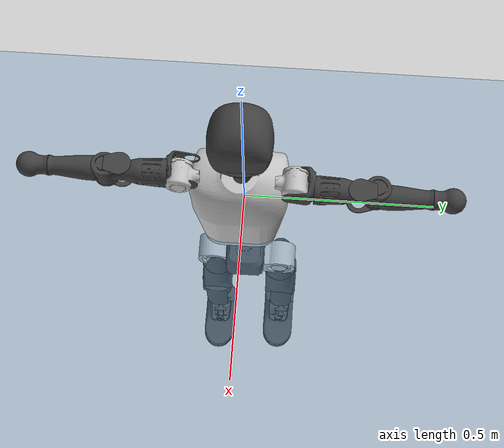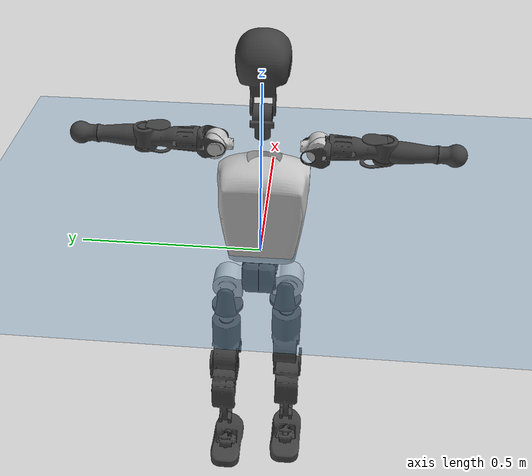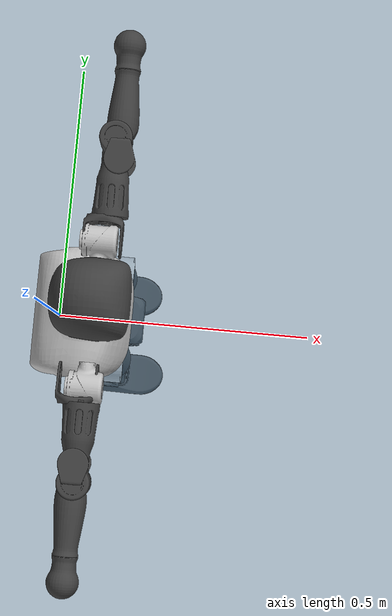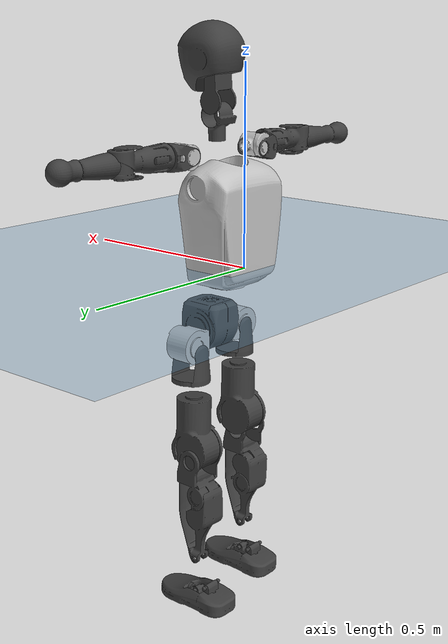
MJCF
<mujoco model="T1">
  <compiler angle="radian" assetdir="assets" balanceinertia="true" inertiafromgeom="false"/>

  <option timestep="0.005" density="1.2" viscosity="2e-05"/>

  <size nkey="1"/>

  <visual>
    <quality shadowsize="8192"/>
    <map shadowclip="0.5"/>
  </visual>

  <default>
    <default class="/">
      <joint armature="0.01" damping="0.01" frictionloss="0.1"/>
      <geom contype="0" conaffinity="0" group="1" solref="-1000 -80"/>
      <site size="0.01 0.005 0.005" group="5"/>
      <general forcelimited="true" biastype="affine" gainprm="25" biasprm="0 -25 -0.6"/>
      <default class="t1">
        <geom rgba="0.25 0.25 0.25 1"/>
        <default class="visual">
          <geom type="mesh" group="2"/>
        </default>
        <default class="collision">
          <geom group="3"/>
        </default>
        <default class="foot">
          <geom size="0.1115 0.05 0.015" type="box" condim="6" group="4" priority="1" solimp="0.015 1 0.015"/>
        </default>
        <default class="reward_collision_sphere">
          <geom group="5" rgba="1 0 0 1"/>
        </default>
      </default>
    </default>
  </default>

  <asset>
    <texture type="skybox" colorspace="auto" name="//unnamed_texture_0" builtin="gradient" rgb1="0.95 0.95 0.95" rgb2="0.95 0.95 0.95" width="100" height="600"/>
    <texture type="2d" colorspace="auto" name="texplane" builtin="checker" rgb1="0.345 0.575 0.748" rgb2="0.345 0.575 0.748" markrgb="1 1 1" width="512" height="512"/>
    <material name="MatPlane" class="/" texture="texplane" texuniform="true" texrepeat="2 2" specular="0.9"/>
    <mesh name="Trunk" class="/" file="Trunk.stl"/>
    <mesh name="H1" class="/" file="H1.stl"/>
    <mesh name="H2" class="/" file="H2.stl"/>
    <mesh name="AL1" class="/" file="AL1.stl"/>
    <mesh name="AL2" class="/" file="AL2.stl"/>
    <mesh name="AL3" class="/" file="AL3.stl"/>
    <mesh name="left_hand_link" class="/" file="left_hand_link.stl"/>
    <mesh name="AR1" class="/" file="AR1.stl"/>
    <mesh name="AR2" class="/" file="AR2.stl"/>
    <mesh name="AR3" class="/" file="AR3.stl"/>
    <mesh name="right_hand_link" class="/" file="right_hand_link.stl"/>
    <mesh name="Waist" class="/" file="Waist.stl"/>
    <mesh name="Hip_Pitch_Left" class="/" file="Hip_Pitch_Left.stl"/>
    <mesh name="Hip_Roll_Left" class="/" file="Hip_Roll_Left.stl"/>
    <mesh name="Hip_Yaw_Left" class="/" file="Hip_Yaw_Left.stl"/>
    <mesh name="Shank_Left" class="/" file="Shank_Left.stl"/>
    <mesh name="Ankle_Cross_Left" class="/" file="Ankle_Cross_Left.stl"/>
    <mesh name="left_foot_link" class="/" file="left_foot_link.stl"/>
    <mesh name="Hip_Pitch_Right" class="/" file="Hip_Pitch_Right.stl"/>
    <mesh name="Hip_Roll_Right" class="/" file="Hip_Roll_Right.stl"/>
    <mesh name="Hip_Yaw_Right" class="/" file="Hip_Yaw_Right.stl"/>
    <mesh name="Shank_Right" class="/" file="Shank_Right.stl"/>
    <mesh name="Ankle_Cross_Right" class="/" file="Ankle_Cross_Right.stl"/>
    <mesh name="right_foot_link" class="/" file="right_foot_link.stl"/>
  </asset>

  <worldbody>
    <geom name="floor" class="/" size="100 100 0.125" type="plane" group="0" material="MatPlane"/>
    <light name="toplight_shadow" class="/" pos="0 0 5" dir="0.0990148 0.0990148 -0.990148" type="directional" ambient="0.04 0.04 0.04" diffuse="0.55 0.55 0.55" specular="0.12 0.12 0.12"/>
    <light name="toplight_fill" class="/" pos="0 0 5" dir="0.0990148 0.0990148 -0.990148" type="directional" castshadow="false" ambient="0.04 0.04 0.04" diffuse="0.3 0.3 0.3" specular="0.08 0.08 0.08"/>
    <body name="trunk" childclass="t1" pos="-0.000836029 -0.00338348 -0.0107612" quat="1 0.000216388 -7.33963e-05 0.000450033">
      <inertial pos="0.0797334 0.00887795 0.134627" quat="0.998629 0.0033659 -0.0491769 0.0175933" mass="19.9224" diaginertia="0.543731 0.0245057 0.228156"/>
      <joint name="//unnamed_joint_0" type="free" armature="0" damping="0" frictionloss="0"/>
      <geom name="//unnamed_geom_1" class="visual" rgba="0.76 0.76 0.76 1" mesh="Trunk"/>
      <geom name="//unnamed_geom_2" class="collision" size="0.0875752 0.116767 0.17515" pos="0.0863309 0 0.155316" type="box"/>
      <geom name="//unnamed_geom_3" class="reward_collision_sphere" size="0.134282" pos="0.0863309 0 0.12943"/>
      <geom name="//unnamed_geom_4" class="reward_collision_sphere" size="0.017515" pos="0.0863309 0.0654381 0"/>
      <geom name="//unnamed_geom_5" class="reward_collision_sphere" size="0.017515" pos="0.0863309 -0.0654381 0"/>
      <geom name="//unnamed_geom_6" class="reward_collision_sphere" size="0.017515" pos="0.0863309 0.082375 0.232974"/>
      <geom name="//unnamed_geom_7" class="reward_collision_sphere" size="0.017515" pos="0.0863309 -0.082375 0.232974"/>
      <site name="imu" pos="-0.00060113 -0.0619558 0.0322067" size="0.0116767"/>
      <camera name="track" pos="0 -1.53972 0" quat="0.707107 0.707107 0 0" mode="trackcom"/>
      <camera name="ego_camera" pos="0.17554 0 0.543606" quat="-0.5 -0.5 0.5 0.5"/>
      <body name="H1" pos="0.0866231 0.00796647 0.319639" quat="0.999982 -0.00411873 -0.000313093 0.00440881">
        <inertial pos="-0.00235664 0.00092889 0.067747" quat="0.749185 -0.0207188 0.0149022 0.661869" mass="0.869283" diaginertia="0.0017355 5.81907e-05 0.000612426"/>
        <joint name="AAHead_yaw" pos="0 0 0" axis="0.0075474 0.026466 0.999621" range="-1.70002 1.28625" armature="0.0120738" damping="0.0597692" frictionloss="0.170166"/>
        <geom name="//unnamed_geom_8" class="visual" mesh="H1"/>
        <body name="H2" pos="-0.00323883 -0.00136745 0.0957199" quat="0.999971 -0.00297384 0.00610064 0.00353063">
          <inertial pos="0.0177955 -0.00884015 0.116965" quat="0.990168 0.122624 -0.0393097 -0.0546448" mass="0.982536" diaginertia="0.0121674 0.000484253 0.00644813"/>
          <joint name="Head_pitch" pos="0 0 0" axis="-0.0108189 -0.998607 -0.0516442" stiffness="0.0453508" range="-1.30003 0.355082" armature="0.0116413" damping="0" frictionloss="0.115585"/>
          <geom name="//unnamed_geom_9" class="visual" mesh="H2"/>
          <geom name="//unnamed_geom_10" class="collision" size="0.0934136" pos="0.0143885 0 0.142373"/>
          <geom name="//unnamed_geom_11" class="reward_collision_sphere" size="0.10509" pos="0.028777 0 0.12943"/>
        </body>
      </body>
      <body name="AL1" pos="0.0871155 0.0854489 0.29298" quat="1 0.000223091 0.000500858 0.000186078">
        <inertial pos="-0.00623812 0.0430517 -0.00143029" quat="0.528509 0.461475 -0.541527 0.463106" mass="0.93824" diaginertia="0.0104018 0.00039034 0.0012142"/>
        <joint name="Left_Shoulder_Pitch" pos="0 0 0" axis="0.0242104 0.999163 0.0329839" stiffness="0.0405811" range="-3.58105 1.24174" armature="0.0178954" damping="0.0497753" frictionloss="0.158121"/>
        <geom name="//unnamed_geom_12" class="visual" rgba="0.76 0.76 0.76 1" mesh="AL1"/>
        <body name="AL2" pos="0.00425119 0.0377758 0.000875704" quat="0.999979 0.00379056 0.00517019 0.0010615">
          <inertial pos="-0.00905448 0.0211181 -0.000613922" quat="0.507252 0.48543 -0.474077 0.531323" mass="0.296869" diaginertia="0.00286491 0.000110378 0.000714453"/>
          <joint name="Left_Shoulder_Roll" pos="0 0 0" axis="-0.999996 -0.00219068 0.00199562" stiffness="0.0163045" range="-1.59534 1.81313" armature="0.00617445" damping="0" frictionloss="0.13016"/>
          <geom name="//unnamed_geom_13" class="visual" mesh="AL2"/>
          <body name="AL3" pos="0.0098978 0.0531488 0.000608406" quat="0.999981 -0.00199596 0.00298547 0.005109">
            <inertial pos="-0.0135811 0.0622912 -0.00769954" quat="0.671046 0.739096 -0.0423181 0.0405393" mass="1.32614" diaginertia="0.0684596 0.00227138 0.00180994"/>
            <joint name="Left_Elbow_Pitch" pos="0 0 0" axis="0.0201828 -0.999737 0.0109165" range="-2.25265 1.98014" armature="0.0053185" damping="0.004454" frictionloss="0.0322431"/>
            <geom name="//unnamed_geom_14" class="visual" mesh="AL3"/>
            <geom name="//unnamed_geom_15" class="collision" size="0.0350301 0.0875752" pos="0 0.038493 0" quat="0.707105 0.707108 0 0" type="cylinder"/>
            <geom name="//unnamed_geom_16" class="reward_collision_sphere" size="0.0420361"/>
            <body name="left_hand_link" pos="0.00923066 0.106727 -0.00206367" quat="0.999975 0.0009232 -0.00581293 -0.00398115">
              <inertial pos="0.00350553 0.074138 -0.000538246" quat="0.722053 0.691824 -0.00282291 0.00336413" mass="0.577997" diaginertia="0.0420994 0.00191881 0.000910318"/>
              <joint name="Left_Elbow_Yaw" pos="0 0 0" axis="-0.00729806 -0.0590826 0.998226" range="-2.28623 -0.28795" armature="0.0178653" damping="0.0690597" frictionloss="0.0709134"/>
              <geom name="//unnamed_geom_17" class="visual" mesh="left_hand_link"/>
              <geom name="//unnamed_geom_18" class="collision" size="0.0350301 0.102171" pos="0 0.100082 0" quat="0.707105 0.707108 0 0" type="cylinder"/>
              <geom name="//unnamed_geom_19" class="reward_collision_sphere" size="0.0583835"/>
              <geom name="//unnamed_geom_20" class="reward_collision_sphere" size="0.0408684" pos="0 0.0846846 0"/>
              <geom name="//unnamed_geom_21" class="reward_collision_sphere" size="0.0408684" pos="0 0.16552 0"/>
            </body>
          </body>
        </body>
      </body>
      <body name="AR1" pos="0.0856957 -0.0926964 0.296638" quat="1 0.000709922 0.000613162 -0.00021767">
        <inertial pos="0.000291702 -0.0225472 3.84971e-06" quat="0.495827 0.516392 -0.496072 0.491332" mass="0.755823" diaginertia="0.00844779 0.000382663 0.00106693"/>
        <joint name="Right_Shoulder_Pitch" pos="0 0 0" axis="-0.0711685 -0.997247 -0.0208419" stiffness="0.0364844" range="-1.23506 3.04078" armature="0.0135697" damping="0" frictionloss="0.197707"/>
        <geom name="//unnamed_geom_22" class="visual" rgba="0.76 0.76 0.76 1" mesh="AR1"/>
        <body name="AR2" pos="-0.0151404 -0.0228736 -0.00449908" quat="1 -1.56881e-05 0.000107051 -1.55312e-05">
          <inertial pos="-0.00502436 -0.0288541 -0.00120925" quat="0.524353 0.478375 -0.494144 0.502029" mass="0.176172" diaginertia="0.00204015 8.5352e-05 0.000541045"/>
          <joint name="Right_Shoulder_Roll" pos="0 0 0" axis="-0.998283 -0.0384458 0.0441959" stiffness="0.0563834" range="-1.71962 1.36068" armature="0.0134552" damping="0.0672418" frictionloss="0.0497834"/>
          <geom name="//unnamed_geom_23" class="visual" mesh="AR2"/>
          <body name="AR3" pos="0.0120334 -0.0503428 0.00725431" quat="0.999992 0.00330429 0.000266189 -0.00229222">
            <inertial pos="-0.000892803 -0.0767313 0.000642717" quat="0.72336 0.689973 -0.00863343 0.0247595" mass="1.1248" diaginertia="0.0639984 0.00274211 0.00179249"/>
            <joint name="Right_Elbow_Pitch" pos="0 0 0" axis="-0.00489957 0.999965 -0.00670869" stiffness="0.0781373" range="-2.05025 2.50903" armature="0.0126445" damping="0.0209406" frictionloss="0.111333"/>
            <geom name="//unnamed_geom_24" class="visual" mesh="AR3"/>
            <geom name="//unnamed_geom_25" class="collision" size="0.0350301 0.0875752" pos="0 -0.038493 0" quat="0.707105 0.707108 0 0" type="cylinder"/>
            <geom name="//unnamed_geom_26" class="reward_collision_sphere" size="0.0420361"/>
            <body name="right_hand_link" pos="-0.00241741 -0.111956 -0.0023956" quat="1 0.000148561 -0.000597837 -6.08641e-05">
              <inertial pos="0.00209181 -0.0843653 0.0147089" quat="0.675051 0.737559 0.0118143 -0.0131849" mass="0.686732" diaginertia="0.05445 0.00253861 0.000871517"/>
              <joint name="Right_Elbow_Yaw" pos="0 0 0" axis="-0.0463537 0.0186795 0.99875" range="-0.124004 2.19591" armature="0.0136751" damping="0.0129017" frictionloss="0.12667"/>
              <geom name="//unnamed_geom_27" class="visual" mesh="right_hand_link"/>
              <geom name="//unnamed_geom_28" class="collision" size="0.0350301 0.102171" pos="0 -0.100082 0" quat="0.707105 0.707108 0 0" type="cylinder"/>
              <geom name="//unnamed_geom_29" class="reward_collision_sphere" size="0.0583835"/>
              <geom name="//unnamed_geom_30" class="reward_collision_sphere" size="0.0408684" pos="0 -0.0846846 0"/>
              <geom name="//unnamed_geom_31" class="reward_collision_sphere" size="0.0408684" pos="0 -0.16552 0"/>
            </body>
          </body>
        </body>
      </body>
      <body name="Waist" pos="0.10575 0.0119941 -0.153409" quat="0.999985 -0.00168858 -0.00465885 0.00238949">
        <inertial pos="0.00178857 0.0109467 0.00672142" quat="0.983675 0.000460596 -0.179937 0.00252698" mass="4.24171" diaginertia="0.0405696 0.00170528 0.0220651"/>
        <joint name="Waist" pos="0 0 0" axis="0.00276974 0.0452012 0.998974" range="-1.57093 1.58205" armature="0.00840515" damping="0.0356338" frictionloss="0.196467"/>
        <geom name="//unnamed_geom_32" class="visual" mesh="Waist"/>
        <body name="Hip_Pitch_Left" pos="-0.00633117 0.0949649 -0.0111263" quat="0.999983 0.0029614 0.00129796 -0.00476994">
          <inertial pos="0.000650463 -0.00138036 -0.0249882" quat="0.971334 0.233523 0.0259525 0.036111" mass="1.62099" diaginertia="0.0127418 0.00035339 0.00542933"/>
          <joint name="Left_Hip_Pitch" pos="0 0 0" axis="-0.0184231 0.999821 -0.00438854" stiffness="0.0661287" range="-1.75056 1.46724" armature="0.0142583" damping="0" frictionloss="0.080412"/>
          <geom name="//unnamed_geom_33" class="visual" rgba="0.76 0.76 0.76 1" mesh="Hip_Pitch_Left"/>
          <body name="Hip_Roll_Left" pos="-0.0126089 0.00237031 -0.0343703" quat="0.999971 0.000656654 -0.00637298 -0.00417246">
            <inertial pos="0.0148779 0.0114668 -0.0742396" quat="0.701159 0.0160021 0.0643579 0.709914" mass="0.578881" diaginertia="0.0118155 0.000378775 0.00190907"/>
            <joint name="Left_Hip_Roll" pos="0 0 0" axis="-0.997125 -0.0746996 -0.0126906" stiffness="0.00185159" range="-1.35905 -0.0613817" armature="0.0048108" damping="0" frictionloss="0.125729"/>
            <geom name="//unnamed_geom_34" class="visual" mesh="Hip_Roll_Left"/>
            <geom name="//unnamed_geom_35" class="reward_collision_sphere" size="0.0642218"/>
            <body name="Hip_Yaw_Left" pos="-0.0157058 0.00190941 -0.117873" quat="0.999977 0.00167678 0.00656883 0.000646788">
              <inertial pos="-0.0135282 0.00199921 -0.107693" quat="0.695749 -0.0321048 -0.0167065 0.717373" mass="3.68104" diaginertia="0.187719 0.00714253 0.00857147"/>
              <joint name="Left_Hip_Yaw" pos="0 0 0" axis="-0.0336732 -0.0172368 -0.999284" stiffness="0.00114196" range="-1.08955 1.28183" armature="0.0103109" damping="0.0222622" frictionloss="0.0735063"/>
              <geom name="//unnamed_geom_36" class="visual" mesh="Hip_Yaw_Left"/>
              <geom name="//unnamed_geom_37" class="collision" size="0.0583835 0.0934136" type="cylinder"/>
              <body name="Shank_Left" pos="-0.0268302 0.00541346 -0.159094" quat="1 3.21855e-05 0.00025705 0.000127364">
                <inertial pos="-0.0201908 0.0124616 -0.162848" quat="0.997979 -0.00660652 -0.00815758 0.0626638" mass="2.85252" diaginertia="0.216488 0.00992323 0.00611705"/>
                <joint name="Left_Knee_Pitch" pos="0 0 0" axis="-0.00215736 0.999619 -0.0275178" range="-0.167205 2.20456" armature="0.0119881" damping="0.00303333" frictionloss="0.1047"/>
                <geom name="//unnamed_geom_38" class="visual" mesh="Shank_Left"/>
                <geom name="//unnamed_geom_39" class="collision" size="0.0583835 0.0875752" pos="0 0 -0.155316" type="cylinder"/>
                <geom name="//unnamed_geom_40" class="reward_collision_sphere" size="0.0758985"/>
                <body name="Ankle_Cross_Left" pos="0.00133035 0.00273886 -0.376152" quat="0.999992 -0.00106741 0.00312396 0.00238474">
                  <inertial pos="-0.0156497 -0.00544283 -0.00236234" quat="0.443078 0.55106 0.551051 0.443123" mass="0.104433" diaginertia="0.000174068 8.05351e-06 4.41487e-05"/>
                  <joint name="Left_Ankle_Pitch" pos="0 0 0" axis="0.0255371 0.999352 -0.025369" range="-0.767267 0.24087" armature="0.0106166" damping="0" frictionloss="0.176105"/>
                  <geom name="//unnamed_geom_41" class="visual" mesh="Ankle_Cross_Left"/>
                  <body name="left_foot_link" pos="0.0028426 -0.00797523 -0.0100849" quat="0.999998 -0.00122642 0.000482046 0.0015938">
                    <inertial pos="-0.00616772 -0.0113216 -0.0117053" quat="0.0101009 0.654919 0.00744298 0.755595" mass="1.19423" diaginertia="0.0126163 0.000543691 0.0067773"/>
                    <joint name="Left_Ankle_Roll" pos="0 0 0" axis="-0.999014 -0.0347825 -0.0275876" range="-0.33033 0.167083" armature="0.00377652" damping="0.00363289" frictionloss="0.0830257"/>
                    <geom name="//unnamed_geom_42" class="visual" mesh="left_foot_link"/>
                    <geom name="left_foot" class="foot" size="0.101135 0.0669351 0.020507" pos="0.0143885 0 -0.0194145"/>
                    <geom name="//unnamed_geom_44" class="reward_collision_sphere" size="0.0607188" pos="0.0143885 0 -0.0194145"/>
                    <geom name="//unnamed_geom_45" class="reward_collision_sphere" size="0.0350301" pos="0.136691 -0.0177068 -0.0194145"/>
                    <geom name="//unnamed_geom_46" class="reward_collision_sphere" size="0.0350301" pos="-0.100719 -0.0177068 -0.0194145"/>
                    <site name="left_foot" class="foot" pos="0.0143885 0 -0.0194145" size="0.0116767"/>
                  </body>
                </body>
              </body>
            </body>
          </body>
        </body>
        <body name="Hip_Pitch_Right" pos="-0.011865 -0.0870909 0.0107291" quat="1 0.000183317 -0.000447472 -1.67694e-05">
          <inertial pos="0.0132998 0.00221605 -0.0234646" quat="0.980474 -0.193354 0.0356021 -0.00427425" mass="1.91981" diaginertia="0.0120918 0.000426617 0.00495396"/>
          <joint name="Right_Hip_Pitch" pos="0 0 0" axis="-0.00109495 -0.999693 0.0247342" stiffness="0.0369498" range="-1.64725 1.96833" armature="0.00302693" damping="0.00928211" frictionloss="0.160851"/>
          <geom name="//unnamed_geom_47" class="visual" rgba="0.76 0.76 0.76 1" mesh="Hip_Pitch_Right"/>
          <body name="Hip_Roll_Right" pos="-0.00331179 0.00814908 -0.0233564" quat="1 0.000659347 -0.000271003 0.000679269">
            <inertial pos="0.000919469 0.0137207 -0.0589958" quat="0.739897 -0.00596289 0.0361421 0.671722" mass="0.702353" diaginertia="0.0124435 0.000487025 0.00225321"/>
            <joint name="Right_Hip_Roll" pos="0 0 0" axis="-0.999925 0.0106178 0.00606252" stiffness="0.0239577" range="-0.166648 1.53975" armature="0.0116012" damping="0" frictionloss="0.180525"/>
            <geom name="//unnamed_geom_48" class="visual" mesh="Hip_Roll_Right"/>
            <geom name="//unnamed_geom_49" class="reward_collision_sphere" size="0.0642218"/>
            <body name="Hip_Yaw_Right" pos="-0.0116561 -0.00530331 -0.109052" quat="0.999987 -0.00212647 -0.00138622 -0.00450677">
              <inertial pos="-0.0111899 0.0150661 -0.122592" quat="0.721836 -0.0544893 -0.0181825 0.689676" mass="3.68691" diaginertia="0.187717 0.00808438 0.011899"/>
              <joint name="Right_Hip_Yaw" pos="0 0 0" axis="0.0283436 -0.0321591 -0.999081" range="-0.839228 0.768657" armature="0.0136986" damping="0" frictionloss="0.117947"/>
              <geom name="//unnamed_geom_50" class="visual" mesh="Hip_Yaw_Right"/>
              <geom name="//unnamed_geom_51" class="collision" size="0.0583835 0.0934136" type="cylinder"/>
              <body name="Shank_Right" pos="-0.0208897 -0.00827838 -0.177845" quat="1 0.000286382 0.000516136 -0.000594952">
                <inertial pos="-0.00919367 -0.0013259 -0.151862" quat="0.998826 0.00420953 -0.0147875 -0.0459293" mass="3.25535" diaginertia="0.296492 0.0116016 0.0081099"/>
                <joint name="Right_Knee_Pitch" pos="0 0 0" axis="-0.00244672 -0.999912 0.0130745" stiffness="0.0603777" range="-2.49587 -0.133664" armature="0.0120611" damping="0" frictionloss="0.115318"/>
                <geom name="//unnamed_geom_52" class="visual" mesh="Shank_Right"/>
                <geom name="//unnamed_geom_53" class="collision" size="0.0583835 0.0875752" pos="0 0 -0.155316" type="cylinder"/>
                <geom name="//unnamed_geom_54" class="reward_collision_sphere" size="0.0758985"/>
                <body name="Ankle_Cross_Right" pos="0.00597395 -0.000427976 -0.365189" quat="0.999983 -0.00330091 -0.00467054 -0.000782528">
                  <inertial pos="-0.00114478 0.000335777 0.00322117" quat="0.438184 0.602251 0.534901 0.39896" mass="0.134451" diaginertia="0.000245895 6.92062e-06 5.6059e-05"/>
                  <joint name="Right_Ankle_Pitch" pos="0 0 0" axis="-0.0563911 -0.998351 -0.010778" stiffness="0.0578755" range="-0.55103 0.748495" armature="0.0125861" damping="0.0592368" frictionloss="0.182641"/>
                  <geom name="//unnamed_geom_55" class="visual" mesh="Ankle_Cross_Right"/>
                  <body name="right_foot_link" pos="0.000839738 -0.00108116 -0.019681" quat="0.999995 0.00301 0.000713358 0.000578897">
                    <inertial pos="0.01493 0.0100682 -0.0104584" quat="-0.0465865 0.634567 0.00532026 0.771445" mass="1.07343" diaginertia="0.0177102 0.000680021 0.00942544"/>
                    <joint name="Right_Ankle_Roll" pos="0 0 0" axis="-0.999976 -0.00556222 0.00421871" range="-0.365788 0.413293" armature="0.00720301" damping="0" frictionloss="0.114666"/>
                    <geom name="//unnamed_geom_56" class="visual" mesh="right_foot_link"/>
                    <geom name="right_foot" class="foot" size="0.0911693 0.0412742 0.0166797" pos="0.0143885 0 -0.0194145"/>
                    <geom name="//unnamed_geom_58" class="reward_collision_sphere" size="0.0467068"/>
                    <geom name="//unnamed_geom_59" class="reward_collision_sphere" size="0.0350301" pos="0.0143885 0 -0.0194145"/>
                    <geom name="//unnamed_geom_60" class="reward_collision_sphere" size="0.0350301" pos="0.136691 0.0177068 -0.0194145"/>
                    <geom name="//unnamed_geom_61" class="reward_collision_sphere" size="0.0350301" pos="-0.100719 0.0177068 -0.0194145"/>
                    <site name="right_foot" class="foot" pos="0.0143885 0 -0.0194145" size="0.0116767"/>
                  </body>
                </body>
              </body>
            </body>
          </body>
        </body>
      </body>
    </body>
  </worldbody>

  <contact>
    <pair class="/" geom1="floor" geom2="left_foot" name="//unnamed_contact_0"/>
    <pair class="/" geom1="floor" geom2="right_foot" name="//unnamed_contact_1"/>
  </contact>

  <actuator>
    <general name="AAHead_yaw" class="/" joint="AAHead_yaw" forcerange="-5.16305 5.16305" gainprm="27.5097" biasprm="0 -27.5097 -0.856318"/>
    <general name="Head_pitch" class="/" joint="Head_pitch" forcerange="-5.00667 5.00667" gainprm="27.5097" biasprm="0 -27.5097 -0.856318"/>
    <general name="Left_Shoulder_Pitch" class="/" joint="Left_Shoulder_Pitch" forcerange="-25.9828 25.9828" gainprm="27.5097" biasprm="0 -27.5097 -0.856318"/>
    <general name="Left_Shoulder_Roll" class="/" joint="Left_Shoulder_Roll" forcerange="-18.7427 18.7427" gainprm="27.5097" biasprm="0 -27.5097 -0.856318"/>
    <general name="Left_Elbow_Pitch" class="/" joint="Left_Elbow_Pitch" forcerange="-10.6308 10.6308" gainprm="27.5097" biasprm="0 -27.5097 -0.856318"/>
    <general name="Left_Elbow_Yaw" class="/" joint="Left_Elbow_Yaw" forcerange="-28.5216 28.5216" gainprm="27.5097" biasprm="0 -27.5097 -0.856318"/>
    <general name="Right_Shoulder_Pitch" class="/" joint="Right_Shoulder_Pitch" forcerange="-32.2401 32.2401" gainprm="27.5097" biasprm="0 -27.5097 -0.856318"/>
    <general name="Right_Shoulder_Roll" class="/" joint="Right_Shoulder_Roll" forcerange="-20.9928 20.9928" gainprm="27.5097" biasprm="0 -27.5097 -0.856318"/>
    <general name="Right_Elbow_Pitch" class="/" joint="Right_Elbow_Pitch" forcerange="-10.3727 10.3727" gainprm="27.5097" biasprm="0 -27.5097 -0.856318"/>
    <general name="Right_Elbow_Yaw" class="/" joint="Right_Elbow_Yaw" forcerange="-15.9061 15.9061" gainprm="27.5097" biasprm="0 -27.5097 -0.856318"/>
    <general name="Waist" class="/" joint="Waist" forcerange="-40.4153 40.4153" gainprm="27.5097" biasprm="0 -27.5097 -0.856318"/>
    <general name="Left_Hip_Pitch" class="/" joint="Left_Hip_Pitch" forcerange="-64.0037 64.0037" gainprm="27.5097" biasprm="0 -27.5097 -0.856318"/>
    <general name="Left_Hip_Roll" class="/" joint="Left_Hip_Roll" forcerange="-18.3044 18.3044" gainprm="27.5097" biasprm="0 -27.5097 -0.856318"/>
    <general name="Left_Hip_Yaw" class="/" joint="Left_Hip_Yaw" forcerange="-54.5877 54.5877" gainprm="27.5097" biasprm="0 -27.5097 -0.856318"/>
    <general name="Left_Knee_Pitch" class="/" joint="Left_Knee_Pitch" forcerange="-41.2988 41.2988" gainprm="27.5097" biasprm="0 -27.5097 -0.856318"/>
    <general name="Left_Ankle_Pitch" class="/" joint="Left_Ankle_Pitch" forcerange="-37.2957 37.2957" gainprm="27.5097" biasprm="0 -27.5097 -0.856318"/>
    <general name="Left_Ankle_Roll" class="/" joint="Left_Ankle_Roll" forcerange="-18.2753 18.2753" gainprm="27.5097" biasprm="0 -27.5097 -0.856318"/>
    <general name="Right_Hip_Pitch" class="/" joint="Right_Hip_Pitch" forcerange="-55.2634 55.2634" gainprm="27.5097" biasprm="0 -27.5097 -0.856318"/>
    <general name="Right_Hip_Roll" class="/" joint="Right_Hip_Roll" forcerange="-46.0238 46.0238" gainprm="27.5097" biasprm="0 -27.5097 -0.856318"/>
    <general name="Right_Hip_Yaw" class="/" joint="Right_Hip_Yaw" forcerange="-45.9805 45.9805" gainprm="27.5097" biasprm="0 -27.5097 -0.856318"/>
    <general name="Right_Knee_Pitch" class="/" joint="Right_Knee_Pitch" forcerange="-38.6661 38.6661" gainprm="27.5097" biasprm="0 -27.5097 -0.856318"/>
    <general name="Right_Ankle_Pitch" class="/" joint="Right_Ankle_Pitch" forcerange="-15.6606 15.6606" gainprm="27.5097" biasprm="0 -27.5097 -0.856318"/>
    <general name="Right_Ankle_Roll" class="/" joint="Right_Ankle_Roll" forcerange="-26.4365 26.4365" gainprm="27.5097" biasprm="0 -27.5097 -0.856318"/>
  </actuator>

  <sensor>
    <gyro site="imu" name="imu_angular_velocity"/>
    <velocimeter site="imu" name="imu_linear_velocity"/>
    <framelinvel objtype="site" objname="left_foot" name="left_foot_global_linear_velocity"/>
    <framelinvel objtype="site" objname="right_foot" name="right_foot_global_linear_velocity"/>
  </sensor>

  <keyframe>
    <key name="home" qpos="0 0 0.6385 1 0 0 0 0 0 0 1.4 0 -0.4 0 -1.4 0 0.4 0 -0.4 0 0 0.8 -0.4 0 0.4 0 0 -0.8 0.4 0"/>
  </keyframe>
</mujoco>
